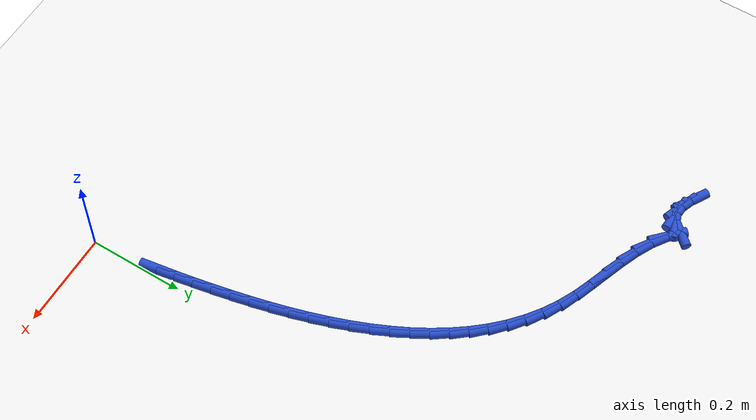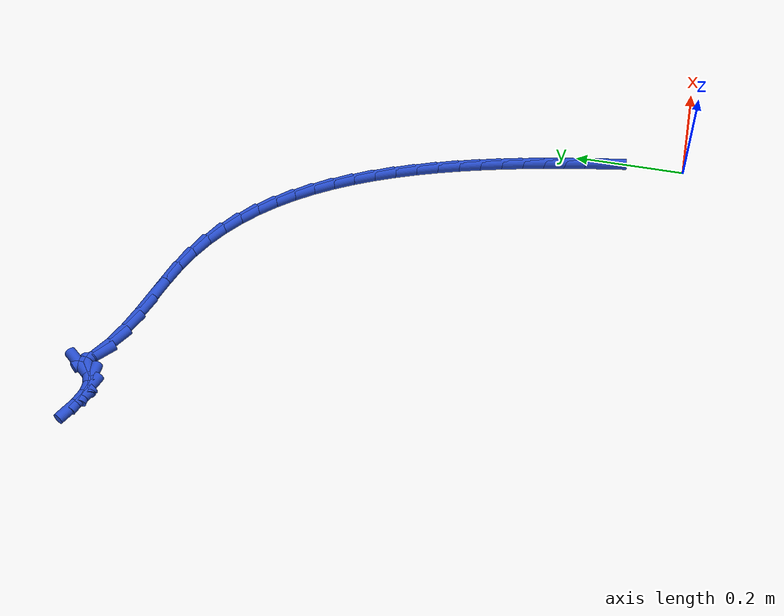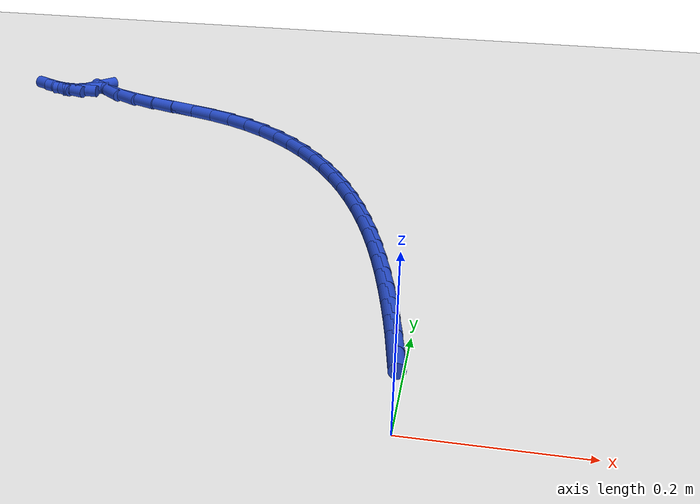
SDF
<sdf version="1.6">
 <world name="default">
  <model name="ground_plane">
   <static>1</static>
   <link name="link">
    <collision name="collision">
     <geometry><plane><normal>0 0 1</normal><size>100 100</size></plane></geometry>
     <surface><friction><ode><mu>100</mu><mu2>50</mu2></ode></friction></surface>
    </collision>
    <visual name="visual">
     <cast_shadows>0</cast_shadows>
     <geometry><plane><normal>0 0 1</normal><size>100 100</size></plane></geometry>
     <material>
      <script><uri>file://media/materials/scripts/gazebo.material</uri><name>Gazebo/WhiteGlow</name></script>
     </material>
    </visual>
   </link>
  </model>
  <model name="line">
   <link name="link_4">
    <pose>-0.012647650006309664 0.1466349394170278 0.01 0 1.57 -1.4132616604367338</pose>
    <collision name="collision">
     <geometry><cylinder><radius>0.01</radius><length>0.08</length></cylinder></geometry>
    </collision>
    <visual name="visual">
     <material>
      <script><name>Gazebo/Blue</name><uri>file://media/materials/scripts/gazebo.material</uri></script>
     </material>
     <geometry><cylinder><radius>0.01</radius><length>0.08</length></cylinder></geometry>
    </visual>
   </link>
   <link name="link_5">
    <pose>-0.018538068725072968 0.1837163653695848 0.01 0 1.57 -1.3950090810265992</pose>
    <collision name="collision">
     <geometry><cylinder><radius>0.01</radius><length>0.08</length></cylinder></geometry>
    </collision>
    <visual name="visual">
     <material>
      <script><name>Gazebo/Blue</name><uri>file://media/materials/scripts/gazebo.material</uri></script>
     </material>
     <geometry><cylinder><radius>0.01</radius><length>0.08</length></cylinder></geometry>
    </visual>
   </link>
   <link name="link_6">
    <pose>-0.025198839977991796 0.2212163612198155 0.01 0 1.57 -1.3814095369820483</pose>
    <collision name="collision">
     <geometry><cylinder><radius>0.01</radius><length>0.08</length></cylinder></geometry>
    </collision>
    <visual name="visual">
     <material>
      <script><name>Gazebo/Blue</name><uri>file://media/materials/scripts/gazebo.material</uri></script>
     </material>
     <geometry><cylinder><radius>0.01</radius><length>0.08</length></cylinder></geometry>
    </visual>
   </link>
   <link name="link_7">
    <pose>-0.03248705114378532 0.259238368000335 0.01 0 1.57 -1.3675903152002524</pose>
    <collision name="collision">
     <geometry><cylinder><radius>0.01</radius><length>0.08</length></cylinder></geometry>
    </collision>
    <visual name="visual">
     <material>
      <script><name>Gazebo/Blue</name><uri>file://media/materials/scripts/gazebo.material</uri></script>
     </material>
     <geometry><cylinder><radius>0.01</radius><length>0.08</length></cylinder></geometry>
    </visual>
   </link>
   <link name="link_8">
    <pose>-0.040412335389427054 0.29770129183847394 0.01 0 1.57 -1.3510456557534498</pose>
    <collision name="collision">
     <geometry><cylinder><radius>0.01</radius><length>0.08</length></cylinder></geometry>
    </collision>
    <visual name="visual">
     <material>
      <script><name>Gazebo/Blue</name><uri>file://media/materials/scripts/gazebo.material</uri></script>
     </material>
     <geometry><cylinder><radius>0.01</radius><length>0.08</length></cylinder></geometry>
    </visual>
   </link>
   <link name="link_9">
    <pose>-0.04906255524476291 0.3364294046652767 0.01 0 1.57 -1.3316585324085675</pose>
    <collision name="collision">
     <geometry><cylinder><radius>0.01</radius><length>0.08</length></cylinder></geometry>
    </collision>
    <visual name="visual">
     <material>
      <script><name>Gazebo/Blue</name><uri>file://media/materials/scripts/gazebo.material</uri></script>
     </material>
     <geometry><cylinder><radius>0.01</radius><length>0.08</length></cylinder></geometry>
    </visual>
   </link>
   <link name="link_10">
    <pose>-0.058526210407279185 0.3752462076289859 0.01 0 1.57 -1.309281534916501</pose>
    <collision name="collision">
     <geometry><cylinder><radius>0.01</radius><length>0.08</length></cylinder></geometry>
    </collision>
    <visual name="visual">
     <material>
      <script><name>Gazebo/Blue</name><uri>file://media/materials/scripts/gazebo.material</uri></script>
     </material>
     <geometry><cylinder><radius>0.01</radius><length>0.08</length></cylinder></geometry>
    </visual>
   </link>
   <link name="link_11">
    <pose>-0.0688918005744622 0.4139752018778441 0.01 0 1.57 -1.283719121978787</pose>
    <collision name="collision">
     <geometry><cylinder><radius>0.01</radius><length>0.08</length></cylinder></geometry>
    </collision>
    <visual name="visual">
     <material>
      <script><name>Gazebo/Blue</name><uri>file://media/materials/scripts/gazebo.material</uri></script>
     </material>
     <geometry><cylinder><radius>0.01</radius><length>0.08</length></cylinder></geometry>
    </visual>
   </link>
   <link name="link_12">
    <pose>-0.08024782544379819 0.45243988856009304 0.01 0 1.57 -1.2547292285573373</pose>
    <collision name="collision">
     <geometry><cylinder><radius>0.01</radius><length>0.08</length></cylinder></geometry>
    </collision>
    <visual name="visual">
     <material>
      <script><name>Gazebo/Blue</name><uri>file://media/materials/scripts/gazebo.material</uri></script>
     </material>
     <geometry><cylinder><radius>0.01</radius><length>0.08</length></cylinder></geometry>
    </visual>
   </link>
   <link name="link_13">
    <pose>-0.0926827847127735 0.4904637688239758 0.01 0 1.57 -1.222025265144609</pose>
    <collision name="collision">
     <geometry><cylinder><radius>0.01</radius><length>0.08</length></cylinder></geometry>
    </collision>
    <visual name="visual">
     <material>
      <script><name>Gazebo/Blue</name><uri>file://media/materials/scripts/gazebo.material</uri></script>
     </material>
     <geometry><cylinder><radius>0.01</radius><length>0.08</length></cylinder></geometry>
    </visual>
   </link>
   <link name="link_14">
    <pose>-0.10628517807887443 0.5278703438177345 0.01 0 1.57 -1.18527969218386</pose>
    <collision name="collision">
     <geometry><cylinder><radius>0.01</radius><length>0.08</length></cylinder></geometry>
    </collision>
    <visual name="visual">
     <material>
      <script><name>Gazebo/Blue</name><uri>file://media/materials/scripts/gazebo.material</uri></script>
     </material>
     <geometry><cylinder><radius>0.01</radius><length>0.08</length></cylinder></geometry>
    </visual>
   </link>
   <link name="link_15">
    <pose>-0.12114350523958722 0.5644831146896113 0.01 0 1.57 -1.1441307266807934</pose>
    <collision name="collision">
     <geometry><cylinder><radius>0.01</radius><length>0.08</length></cylinder></geometry>
    </collision>
    <visual name="visual">
     <material>
      <script><name>Gazebo/Blue</name><uri>file://media/materials/scripts/gazebo.material</uri></script>
     </material>
     <geometry><cylinder><radius>0.01</radius><length>0.08</length></cylinder></geometry>
    </visual>
   </link>
   <link name="link_16">
    <pose>-0.13734626589239818 0.6001255825878488 0.01 0 1.57 -1.0981942273242975</pose>
    <collision name="collision">
     <geometry><cylinder><radius>0.01</radius><length>0.08</length></cylinder></geometry>
    </collision>
    <visual name="visual">
     <material>
      <script><name>Gazebo/Blue</name><uri>file://media/materials/scripts/gazebo.material</uri></script>
     </material>
     <geometry><cylinder><radius>0.01</radius><length>0.08</length></cylinder></geometry>
    </visual>
   </link>
   <link name="link_17">
    <pose>-0.15498195973479367 0.6346212486606895 0.01 0 1.57 -1.0470833227121197</pose>
    <collision name="collision">
     <geometry><cylinder><radius>0.01</radius><length>0.08</length></cylinder></geometry>
    </collision>
    <visual name="visual">
     <material>
      <script><name>Gazebo/Blue</name><uri>file://media/materials/scripts/gazebo.material</uri></script>
     </material>
     <geometry><cylinder><radius>0.01</radius><length>0.08</length></cylinder></geometry>
    </visual>
   </link>
   <link name="link_18">
    <pose>-0.17413908646425988 0.6677936140563754 0.01 0 1.57 -0.9904386852999633</pose>
    <collision name="collision">
     <geometry><cylinder><radius>0.01</radius><length>0.08</length></cylinder></geometry>
    </collision>
    <visual name="visual">
     <material>
      <script><name>Gazebo/Blue</name><uri>file://media/materials/scripts/gazebo.material</uri></script>
     </material>
     <geometry><cylinder><radius>0.01</radius><length>0.08</length></cylinder></geometry>
    </visual>
   </link>
   <link name="link_19">
    <pose>-0.19490614577828325 0.6994661799231494 0.01 0 1.57 -0.9279721045907157</pose>
    <collision name="collision">
     <geometry><cylinder><radius>0.01</radius><length>0.08</length></cylinder></geometry>
    </collision>
    <visual name="visual">
     <material>
      <script><name>Gazebo/Blue</name><uri>file://media/materials/scripts/gazebo.material</uri></script>
     </material>
     <geometry><cylinder><radius>0.01</radius><length>0.08</length></cylinder></geometry>
    </visual>
   </link>
   <link name="link_20">
    <pose>-0.21737163737434995 0.7294624474092537 0.01 0 1.57 -0.8595245318368444</pose>
    <collision name="collision">
     <geometry><cylinder><radius>0.01</radius><length>0.08</length></cylinder></geometry>
    </collision>
    <visual name="visual">
     <material>
      <script><name>Gazebo/Blue</name><uri>file://media/materials/scripts/gazebo.material</uri></script>
     </material>
     <geometry><cylinder><radius>0.01</radius><length>0.08</length></cylinder></geometry>
    </visual>
   </link>
   <link name="link_21">
    <pose>-0.24162406094994635 0.7576059176629304 0.01 0 1.57 -0.7851362845432149</pose>
    <collision name="collision">
     <geometry><cylinder><radius>0.01</radius><length>0.08</length></cylinder></geometry>
    </collision>
    <visual name="visual">
     <material>
      <script><name>Gazebo/Blue</name><uri>file://media/materials/scripts/gazebo.material</uri></script>
     </material>
     <geometry><cylinder><radius>0.01</radius><length>0.08</length></cylinder></geometry>
    </visual>
   </link>
   <link name="link_22">
    <pose>-0.26775191620255867 0.7837200918324221 0.01 0 1.57 -0.7051211690797357</pose>
    <collision name="collision">
     <geometry><cylinder><radius>0.01</radius><length>0.08</length></cylinder></geometry>
    </collision>
    <visual name="visual">
     <material>
      <script><name>Gazebo/Blue</name><uri>file://media/materials/scripts/gazebo.material</uri></script>
     </material>
     <geometry><cylinder><radius>0.01</radius><length>0.08</length></cylinder></geometry>
    </visual>
   </link>
   <link name="link_23">
    <pose>-0.29584370282967326 0.8076284710659711 0.01 0 1.57 -0.6201286901621793</pose>
    <collision name="collision">
     <geometry><cylinder><radius>0.01</radius><length>0.08</length></cylinder></geometry>
    </collision>
    <visual name="visual">
     <material>
      <script><name>Gazebo/Blue</name><uri>file://media/materials/scripts/gazebo.material</uri></script>
     </material>
     <geometry><cylinder><radius>0.01</radius><length>0.08</length></cylinder></geometry>
    </visual>
   </link>
   <link name="link_24">
    <pose>-0.3259879205287765 0.8291545565118202 0.01 0 1.57 -0.5311722789709444</pose>
    <collision name="collision">
     <geometry><cylinder><radius>0.01</radius><length>0.08</length></cylinder></geometry>
    </collision>
    <visual name="visual">
     <material>
      <script><name>Gazebo/Blue</name><uri>file://media/materials/scripts/gazebo.material</uri></script>
     </material>
     <geometry><cylinder><radius>0.01</radius><length>0.08</length></cylinder></geometry>
    </visual>
   </link>
   <link name="link_25">
    <pose>-0.35827306899735456 0.8481218493182112 0.01 0 1.57 -0.4399042992422587</pose>
    <collision name="collision">
     <geometry><cylinder><radius>0.01</radius><length>0.08</length></cylinder></geometry>
    </collision>
    <visual name="visual">
     <material>
      <script><name>Gazebo/Blue</name><uri>file://media/materials/scripts/gazebo.material</uri></script>
     </material>
     <geometry><cylinder><radius>0.01</radius><length>0.08</length></cylinder></geometry>
    </visual>
   </link>
   <link name="link_26">
    <pose>-0.39278040297476985 0.864363196086521 0.01 0 1.57 -0.36426872050714515</pose>
    <collision name="collision">
     <geometry><cylinder><radius>0.01</radius><length>0.08</length></cylinder></geometry>
    </collision>
    <visual name="visual">
     <material>
      <script><name>Gazebo/Blue</name><uri>file://media/materials/scripts/gazebo.material</uri></script>
     </material>
     <geometry><cylinder><radius>0.01</radius><length>0.08</length></cylinder></geometry>
    </visual>
   </link>
   <link name="link_27">
    <pose>-0.42918002552633405 0.8782417982711164 0.01 0 1.57 -0.32747956733553923</pose>
    <collision name="collision">
     <geometry><cylinder><radius>0.01</radius><length>0.08</length></cylinder></geometry>
    </collision>
    <visual name="visual">
     <material>
      <script><name>Gazebo/Blue</name><uri>file://media/materials/scripts/gazebo.material</uri></script>
     </material>
     <geometry><cylinder><radius>0.01</radius><length>0.08</length></cylinder></geometry>
    </visual>
   </link>
   <link name="link_28">
    <pose>-0.46651793691202825 0.8909259031828297 0.01 0 1.57 -0.3290210018537713</pose>
    <collision name="collision">
     <geometry><cylinder><radius>0.01</radius><length>0.08</length></cylinder></geometry>
    </collision>
    <visual name="visual">
     <material>
      <script><name>Gazebo/Blue</name><uri>file://media/materials/scripts/gazebo.material</uri></script>
     </material>
     <geometry><cylinder><radius>0.01</radius><length>0.08</length></cylinder></geometry>
    </visual>
   </link>
   <link name="link_29">
    <pose>-0.5037879628153368 0.903651059426867 0.01 0 1.57 -0.3691033247265653</pose>
    <collision name="collision">
     <geometry><cylinder><radius>0.01</radius><length>0.08</length></cylinder></geometry>
    </collision>
    <visual name="visual">
     <material>
      <script><name>Gazebo/Blue</name><uri>file://media/materials/scripts/gazebo.material</uri></script>
     </material>
     <geometry><cylinder><radius>0.01</radius><length>0.08</length></cylinder></geometry>
    </visual>
   </link>
   <link name="link_30">
    <pose>-0.5399839289197447 0.9176528156084339 0.01 0 1.57 -0.4508107684889604</pose>
    <collision name="collision">
     <geometry><cylinder><radius>0.01</radius><length>0.08</length></cylinder></geometry>
    </collision>
    <visual name="visual">
     <material>
      <script><name>Gazebo/Blue</name><uri>file://media/materials/scripts/gazebo.material</uri></script>
     </material>
     <geometry><cylinder><radius>0.01</radius><length>0.08</length></cylinder></geometry>
    </visual>
   </link>
   <link name="link_31">
    <pose>-0.574099660908736 0.9341667203327363 0.01 0 1.57 -0.5784689480780759</pose>
    <collision name="collision">
     <geometry><cylinder><radius>0.01</radius><length>0.08</length></cylinder></geometry>
    </collision>
    <visual name="visual">
     <material>
      <script><name>Gazebo/Blue</name><uri>file://media/materials/scripts/gazebo.material</uri></script>
     </material>
     <geometry><cylinder><radius>0.01</radius><length>0.08</length></cylinder></geometry>
    </visual>
   </link>
   <link name="link_32">
    <pose>-0.6051289844657957 0.9544283222049803 0.01 0 1.57 -0.7529863351477291</pose>
    <collision name="collision">
     <geometry><cylinder><radius>0.01</radius><length>0.08</length></cylinder></geometry>
    </collision>
    <visual name="visual">
     <material>
      <script><name>Gazebo/Blue</name><uri>file://media/materials/scripts/gazebo.material</uri></script>
     </material>
     <geometry><cylinder><radius>0.01</radius><length>0.08</length></cylinder></geometry>
    </visual>
   </link>
   <link name="link_51">
    <pose>-0.6305608229323674 0.9667642271343905 0.01 0 1.57 0.8453109891184138</pose>
    <collision name="collision">
     <geometry><cylinder><radius>0.01</radius><length>0.08</length></cylinder></geometry>
    </collision>
    <visual name="visual">
     <material>
      <script><name>Gazebo/Blue</name><uri>file://media/materials/scripts/gazebo.material</uri></script>
     </material>
     <geometry><cylinder><radius>0.01</radius><length>0.08</length></cylinder></geometry>
    </visual>
   </link>
   <link name="link_52">
    <pose>-0.6434963882672983 0.9521777634743991 0.01 0 1.57 0.36996330935486665</pose>
    <collision name="collision">
     <geometry><cylinder><radius>0.01</radius><length>0.08</length></cylinder></geometry>
    </collision>
    <visual name="visual">
     <material>
      <script><name>Gazebo/Blue</name><uri>file://media/materials/scripts/gazebo.material</uri></script>
     </material>
     <geometry><cylinder><radius>0.01</radius><length>0.08</length></cylinder></geometry>
    </visual>
   </link>
   <link name="link_53">
    <pose>-0.659777122350564 0.9458637536837778 0.01 0 1.57 -0.0656446612627032</pose>
    <collision name="collision">
     <geometry><cylinder><radius>0.01</radius><length>0.08</length></cylinder></geometry>
    </collision>
    <visual name="visual">
     <material>
      <script><name>Gazebo/Blue</name><uri>file://media/materials/scripts/gazebo.material</uri></script>
     </material>
     <geometry><cylinder><radius>0.01</radius><length>0.08</length></cylinder></geometry>
    </visual>
   </link>
   <link name="link_54">
    <pose>-0.6792246465427171 0.9471422167430713 0.01 0 1.57 -0.35004715925948304</pose>
    <collision name="collision">
     <geometry><cylinder><radius>0.01</radius><length>0.08</length></cylinder></geometry>
    </collision>
    <visual name="visual">
     <material>
      <script><name>Gazebo/Blue</name><uri>file://media/materials/scripts/gazebo.material</uri></script>
     </material>
     <geometry><cylinder><radius>0.01</radius><length>0.08</length></cylinder></geometry>
    </visual>
   </link>
   <link name="link_55">
    <pose>-0.70166058220431 0.9553331716328233 0.01 0 1.57 -0.5190624420955265</pose>
    <collision name="collision">
     <geometry><cylinder><radius>0.01</radius><length>0.08</length></cylinder></geometry>
    </collision>
    <visual name="visual">
     <material>
      <script><name>Gazebo/Blue</name><uri>file://media/materials/scripts/gazebo.material</uri></script>
     </material>
     <geometry><cylinder><radius>0.01</radius><length>0.08</length></cylinder></geometry>
    </visual>
   </link>
  </model>
 </world>
</sdf>
